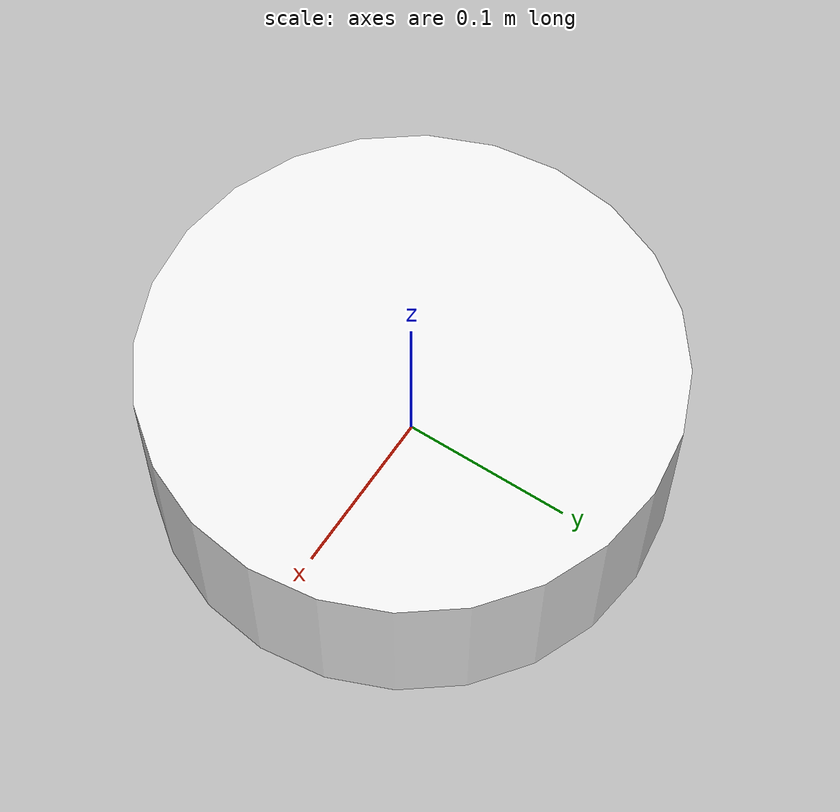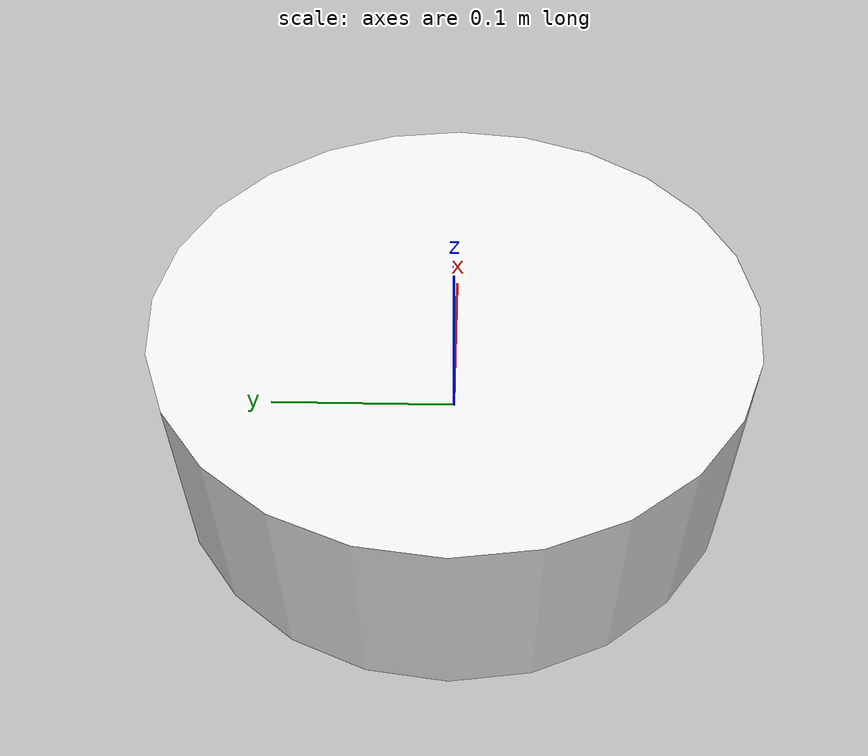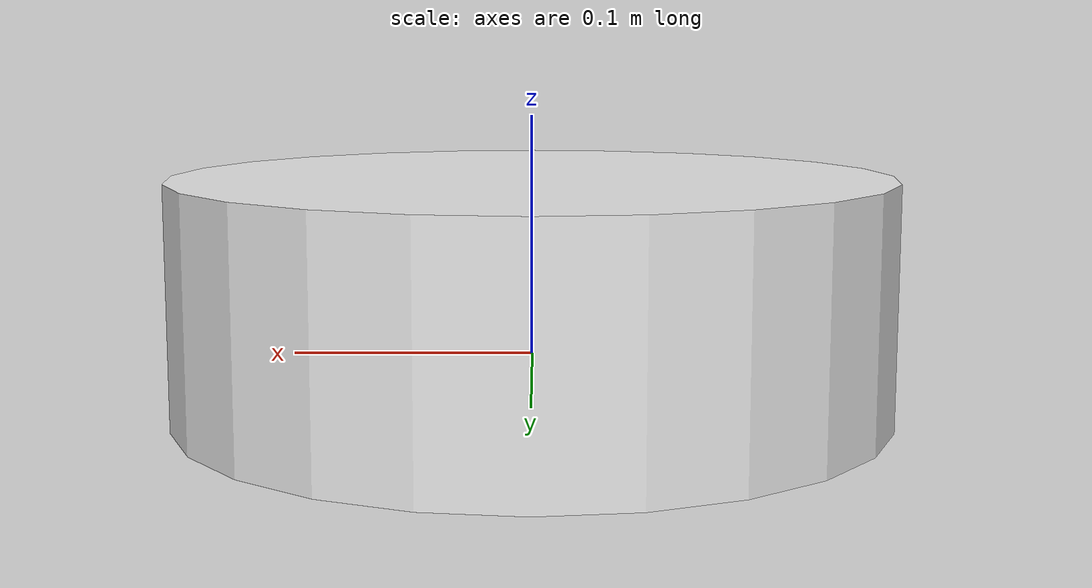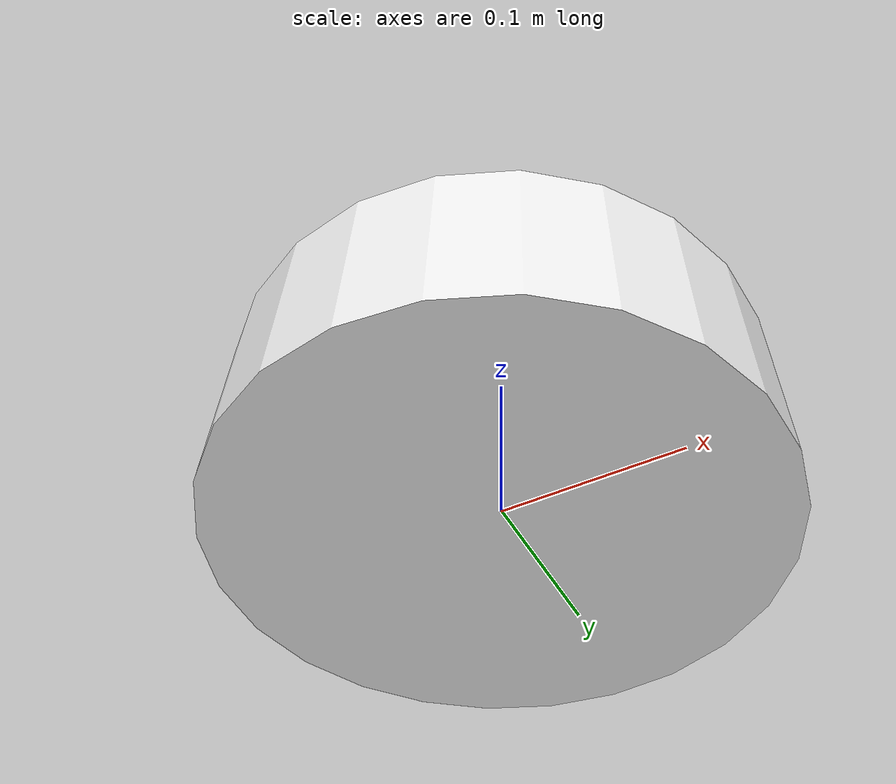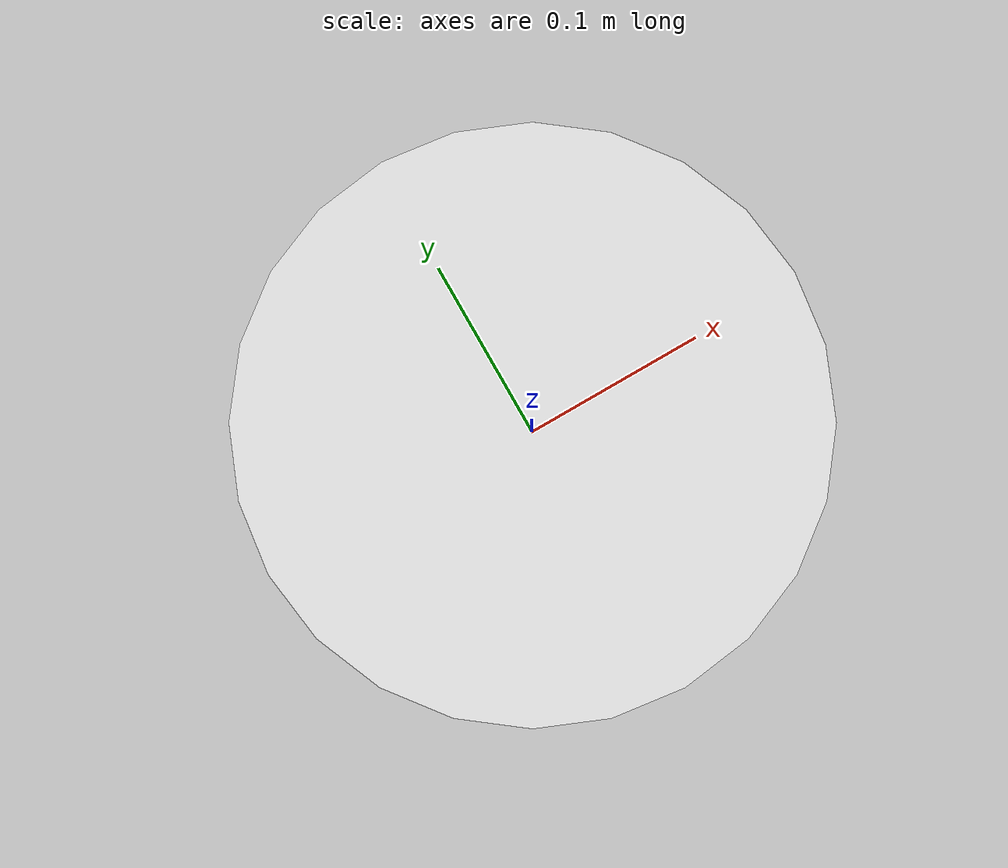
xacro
<?xml version="1.0"?>
<robot xmlns:xacro="http://www.ros.org/wiki/xacro">

<!--Base Link-->
<link name = 'base_link'></link>

<!--Base Footprint-->
<link name = 'base_footprint'></link>

<joint name="footprint_joint" type="fixed">
    <parent link="base_link"/>
    <child link="base_footprint"/>
    <origin xyz="0 0 0" rpy="0 0 0"/>
</joint>

<!--Chassis-->
<link name="chassis">
    <visual>
        <origin xyz="0 0 0.025" rpy="0 0 0"/>
        <geometry>
            <cylinder radius="0.15" length = "0.1"/>
        </geometry>
        <material name="white"/>
    </visual>

    <collision>
         <origin xyz="0 0 0.025" rpy="0 0 0"/>
        <geometry>
            <cylinder radius="0.15" length = "0.1"/>
        </geometry>
    </collision>

    <xacro:inertial_cylinder mass="0.5" radius="0.15" length="0.1">
        <origin xyz="0 0 0.025" rpy="0 0 0"/>
    </xacro:inertial_cylinder>

</link>
<joint name="chassis_joint" type="fixed">
    <parent link="base_link"/>
    <child link="chassis"/>
    <origin xyz="0 0 0" rpy="0 0 0"/>
</joint>

</robot>
